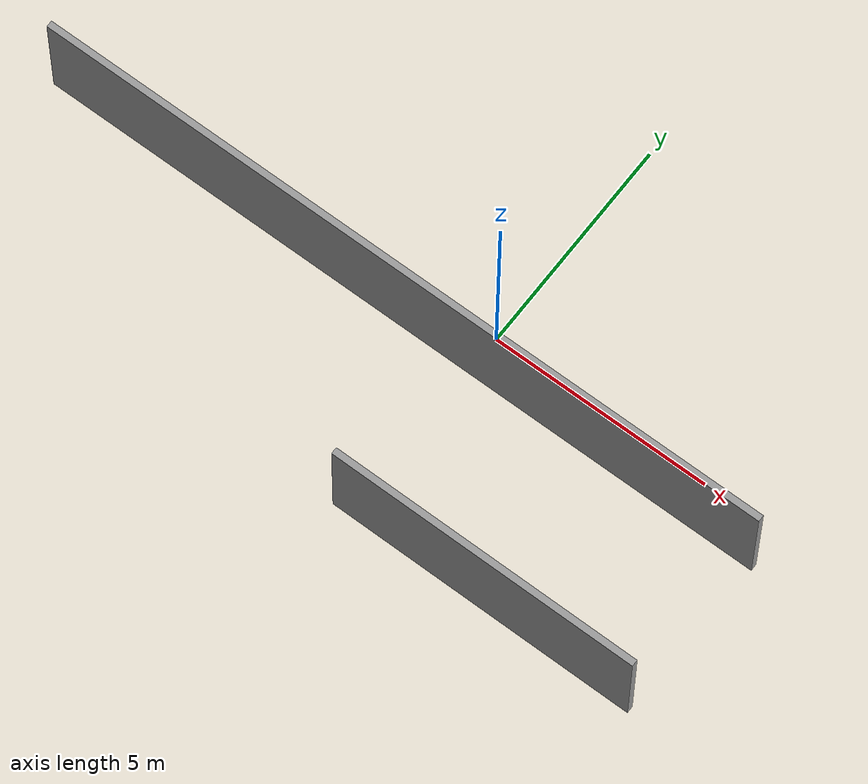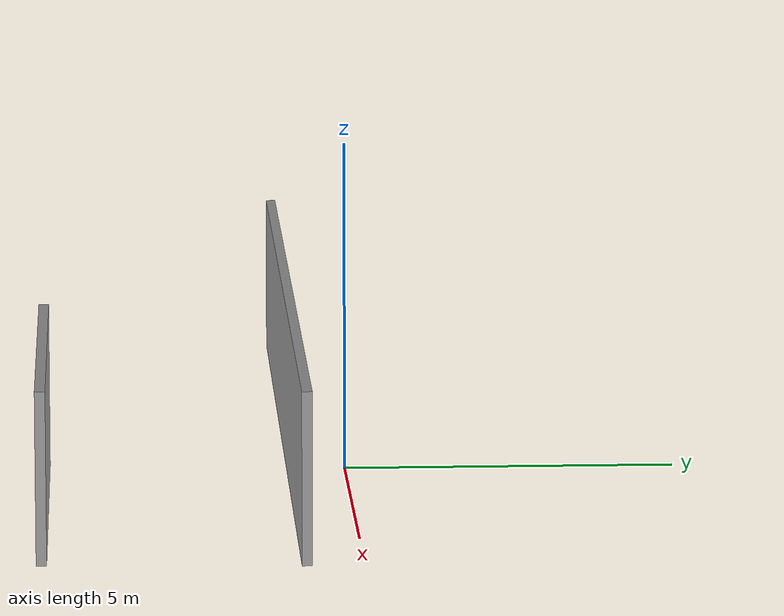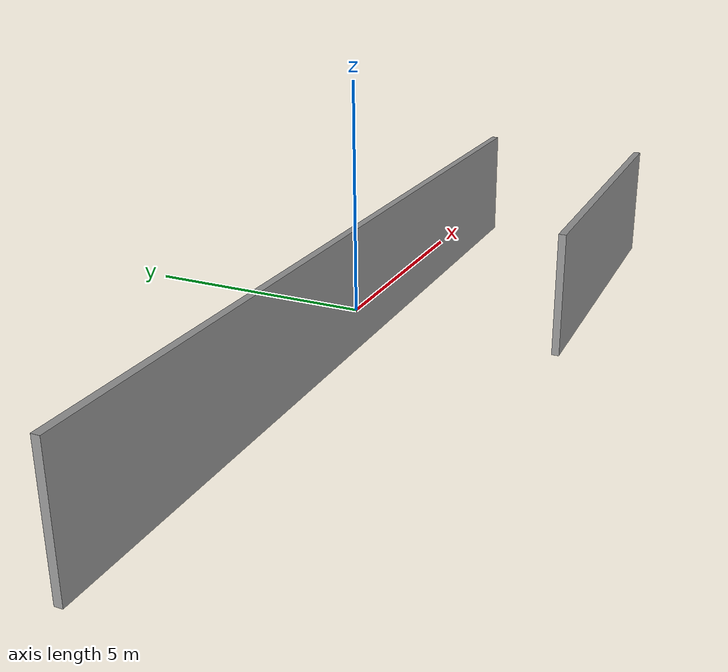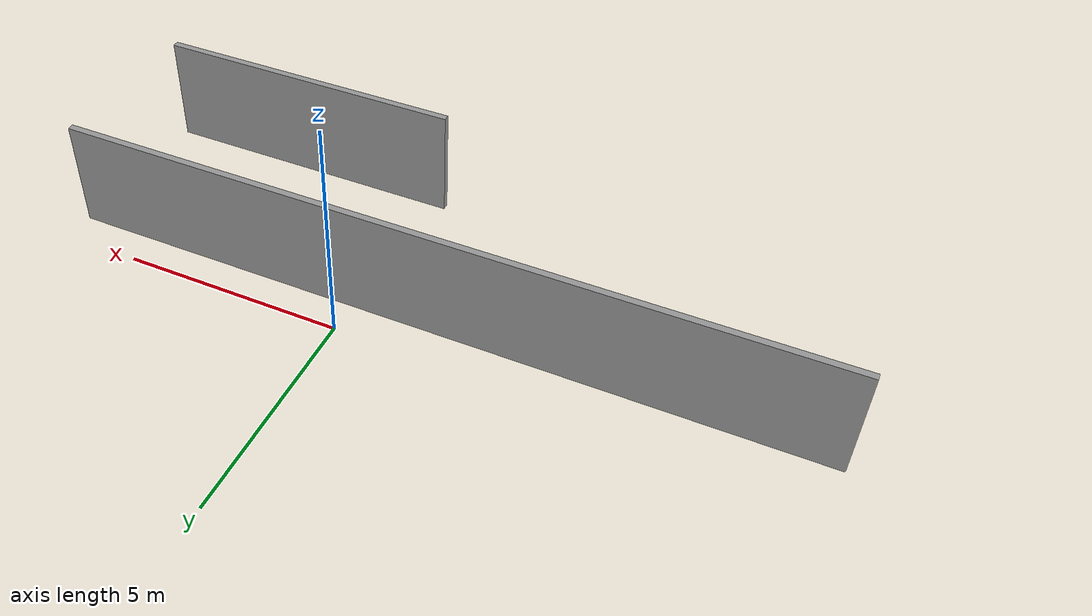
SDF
<?xml version='1.0'?>
<sdf version='1.7'>
  <model name='Untitled'>
    <pose>-1.76456 -2.31578 0 0 -0 0</pose>
    <link name='Wall_6'>
      <collision name='Wall_6_Collision'>
        <geometry>
          <box>
            <size>7 0.15 2.5</size>
          </box>
        </geometry>
        <pose>0 0 1.25 0 -0 0</pose>
      </collision>
      <visual name='Wall_6_Visual'>
        <pose>0 0 1.25 0 -0 0</pose>
        <geometry>
          <box>
            <size>7 0.15 2.5</size>
          </box>
        </geometry>
        <material>
          <script>
            <uri>file://media/materials/scripts/gazebo.material</uri>
            <name>Gazebo/Grey</name>
          </script>
          <ambient>1 1 1 1</ambient>
        </material>
        <meta>
          <layer>0</layer>
        </meta>
      </visual>
      <pose>4.83637 -2.24078 0 0 -0 3.14159</pose>
    </link>
    <link name='Wall_9'>
      <collision name='Wall_9_Collision'>
        <geometry>
          <box>
            <size>17 0.15 2.5</size>
          </box>
        </geometry>
        <pose>0 0 1.25 0 -0 0</pose>
      </collision>
      <visual name='Wall_9_Visual'>
        <pose>0 0 1.25 0 -0 0</pose>
        <geometry>
          <box>
            <size>17 0.15 2.5</size>
          </box>
        </geometry>
        <material>
          <script>
            <uri>file://media/materials/scripts/gazebo.material</uri>
            <name>Gazebo/Grey</name>
          </script>
          <ambient>1 1 1 1</ambient>
        </material>
        <meta>
          <layer>0</layer>
        </meta>
      </visual>
      <pose>0 1.50034 0 0 -0 3.14159</pose>
    </link>
    <static>1</static>
  </model>
</sdf>
